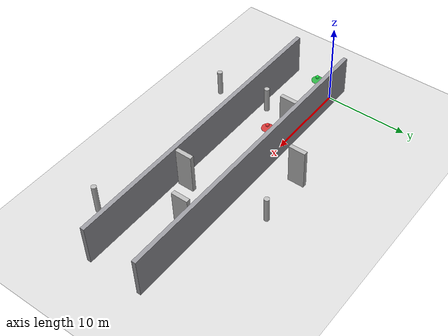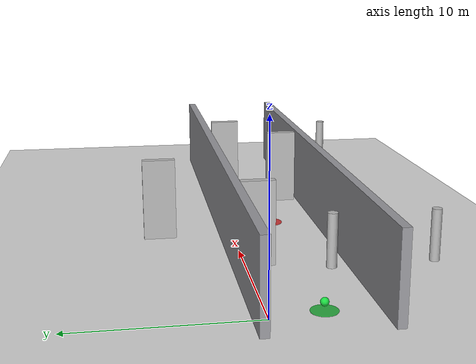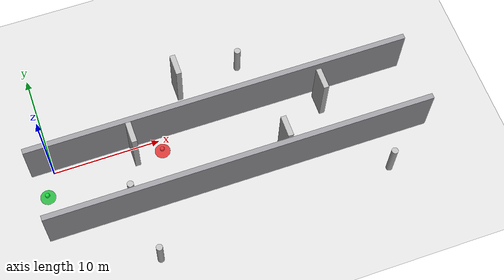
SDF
<sdf version='1.10'>
  <world name='obstacle_avoidance'>
    <physics type='ode'>
      <max_step_size>0.0040000000000000001</max_step_size>
      <real_time_factor>1</real_time_factor>
      <real_time_update_rate>250</real_time_update_rate>
    </physics>
    <plugin name='gz::sim::systems::Physics' filename='gz-sim-physics-system'/>
    <plugin name='gz::sim::systems::UserCommands' filename='gz-sim-user-commands-system'/>
    <plugin name='gz::sim::systems::SceneBroadcaster' filename='gz-sim-scene-broadcaster-system'/>
    <plugin name='gz::sim::systems::Contact' filename='gz-sim-contact-system'/>
    <plugin name='gz::sim::systems::Imu' filename='gz-sim-imu-system'/>
    <plugin name='gz::sim::systems::AirPressure' filename='gz-sim-air-pressure-system'/>
    <plugin name='gz::sim::systems::AirSpeed' filename='gz-sim-air-speed-system'/>
    <plugin name='gz::sim::systems::ApplyLinkWrench' filename='gz-sim-apply-link-wrench-system'/>
    <plugin name='gz::sim::systems::NavSat' filename='gz-sim-navsat-system'/>
    <plugin name='gz::sim::systems::Magnetometer' filename='gz-sim-magnetometer-system'/>
    <plugin name='gz::sim::systems::Sensors' filename='gz-sim-sensors-system'>
      <render_engine>ogre2</render_engine>
    </plugin>
    <plugin name='custom::OpticalFlowSystem' filename='libOpticalFlowSystem.so'/>
    <plugin name='custom::GstCameraSystem' filename='libGstCameraSystem.so'/>
    <gravity>0 0 -9.8000000000000007</gravity>
    <magnetic_field>6.0000000000000002e-06 2.3e-05 -4.1999999999999998e-05</magnetic_field>
    <atmosphere type='adiabatic'/>
    <scene>
      <grid>true</grid>
      <ambient>0.449999988 0.449999988 0.449999988 1</ambient>
      <background>0.74000001 0.769999981 0.819999993 1</background>
      <shadows>true</shadows>
    </scene>
    <spherical_coordinates>
      <surface_model>EARTH_WGS84</surface_model>
      <world_frame_orientation>ENU</world_frame_orientation>
      <latitude_deg>47.397971057728974</latitude_deg>
      <longitude_deg>8.5461637398001464</longitude_deg>
      <elevation>0</elevation>
      <heading_deg>0</heading_deg>
    </spherical_coordinates>
    <model name='ground_plane'>
      <static>true</static>
      <link name='link'>
        <collision name='collision'>
          <geometry>
            <plane>
              <normal>0 0 1</normal>
              <size>1 1</size>
            </plane>
          </geometry>
          <surface>
            <friction>
              <ode/>
            </friction>
            <bounce/>
            <contact/>
          </surface>
        </collision>
        <visual name='visual'>
          <geometry>
            <plane>
              <normal>0 0 1</normal>
              <size>120 120</size>
            </plane>
          </geometry>
          <material>
            <ambient>0.850000024 0.850000024 0.850000024 1</ambient>
            <diffuse>0.850000024 0.850000024 0.850000024 1</diffuse>
            <specular>0.400000006 0.400000006 0.400000006 1</specular>
          </material>
        </visual>
        <pose>0 0 0 0 0 0</pose>
        <inertial>
          <pose>0 0 0 0 0 0</pose>
          <mass>1</mass>
          <inertia>
            <ixx>1</ixx>
            <ixy>0</ixy>
            <ixz>0</ixz>
            <iyy>1</iyy>
            <iyz>0</iyz>
            <izz>1</izz>
          </inertia>
        </inertial>
        <enable_wind>false</enable_wind>
      </link>
      <pose>0 0 0 0 0 0</pose>
      <self_collide>false</self_collide>
    </model>
    <model name='lane_left_wall'>
      <static>false</static>
      <pose>16 0.54637867212295532 2.5 0 0 0</pose>
      <link name='link'>
        <collision name='collision'>
          <geometry>
            <box>
              <size>36 0.5 5</size>
            </box>
          </geometry>
          <surface>
            <friction>
              <ode/>
            </friction>
            <bounce/>
            <contact/>
          </surface>
        </collision>
        <visual name='visual'>
          <geometry>
            <box>
              <size>36 0.5 5</size>
            </box>
          </geometry>
          <material>
            <ambient>0.5 0.5 0.519999981 1</ambient>
            <diffuse>0.600000024 0.600000024 0.620000005 1</diffuse>
          </material>
        </visual>
        <pose>0 0 0 0 0 0</pose>
        <inertial>
          <pose>0 0 0 0 0 0</pose>
          <mass>1</mass>
          <inertia>
            <ixx>1</ixx>
            <ixy>0</ixy>
            <ixz>0</ixz>
            <iyy>1</iyy>
            <iyz>0</iyz>
            <izz>1</izz>
          </inertia>
        </inertial>
        <enable_wind>false</enable_wind>
      </link>
      <self_collide>false</self_collide>
    </model>
    <model name='lane_right_wall'>
      <static>false</static>
      <pose>16 -6 2.5 0 0 0</pose>
      <link name='link'>
        <collision name='collision'>
          <geometry>
            <box>
              <size>36 0.5 5</size>
            </box>
          </geometry>
          <surface>
            <friction>
              <ode/>
            </friction>
            <bounce/>
            <contact/>
          </surface>
        </collision>
        <visual name='visual'>
          <geometry>
            <box>
              <size>36 0.5 5</size>
            </box>
          </geometry>
          <material>
            <ambient>0.5 0.5 0.519999981 1</ambient>
            <diffuse>0.600000024 0.600000024 0.620000005 1</diffuse>
          </material>
        </visual>
        <pose>0 0 0 0 0 0</pose>
        <inertial>
          <pose>0 0 0 0 0 0</pose>
          <mass>1</mass>
          <inertia>
            <ixx>1</ixx>
            <ixy>0</ixy>
            <ixz>0</ixz>
            <iyy>1</iyy>
            <iyz>0</iyz>
            <izz>1</izz>
          </inertia>
        </inertial>
        <enable_wind>false</enable_wind>
      </link>
      <self_collide>false</self_collide>
    </model>
    <model name='block_02'>
      <static>false</static>
      <pose>6.0954799652099609 -4.6888570785522461 1.75 0 0 0</pose>
      <link name='link'>
        <collision name='collision'>
          <geometry>
            <cylinder>
              <radius>0.29999999999999999</radius>
              <length>3.2000000000000002</length>
            </cylinder>
          </geometry>
          <surface>
            <friction>
              <ode/>
            </friction>
            <bounce/>
            <contact/>
          </surface>
        </collision>
        <visual name='visual'>
          <geometry>
            <cylinder>
              <radius>0.29999999999999999</radius>
              <length>3.2000000000000002</length>
            </cylinder>
          </geometry>
        </visual>
        <pose>0 0 0 0 0 0</pose>
        <inertial>
          <pose>0 0 0 0 0 0</pose>
          <mass>1</mass>
          <inertia>
            <ixx>1</ixx>
            <ixy>0</ixy>
            <ixz>0</ixz>
            <iyy>1</iyy>
            <iyz>0</iyz>
            <izz>1</izz>
          </inertia>
        </inertial>
        <enable_wind>false</enable_wind>
      </link>
      <self_collide>false</self_collide>
    </model>
    <model name='block_04'>
      <static>false</static>
      <pose>19.404600143432617 4.9849119186401367 1.6747299432754517 0 0 0</pose>
      <link name='link'>
        <collision name='collision'>
          <geometry>
            <cylinder>
              <radius>0.29999999999999999</radius>
              <length>3.2000000000000002</length>
            </cylinder>
          </geometry>
          <surface>
            <friction>
              <ode/>
            </friction>
            <bounce/>
            <contact/>
          </surface>
        </collision>
        <visual name='visual'>
          <geometry>
            <cylinder>
              <radius>0.29999999999999999</radius>
              <length>3.2000000000000002</length>
            </cylinder>
          </geometry>
        </visual>
        <pose>0 0 0 0 0 0</pose>
        <inertial>
          <pose>0 0 0 0 0 0</pose>
          <mass>1</mass>
          <inertia>
            <ixx>1</ixx>
            <ixy>0</ixy>
            <ixz>0</ixz>
            <iyy>1</iyy>
            <iyz>0</iyz>
            <izz>1</izz>
          </inertia>
        </inertial>
        <enable_wind>false</enable_wind>
      </link>
      <self_collide>false</self_collide>
    </model>
    <model name='block_06'>
      <static>false</static>
      <pose>6.7499117851257324 -10.996500015258789 1.5 0 0 0</pose>
      <link name='link'>
        <collision name='collision'>
          <geometry>
            <cylinder>
              <radius>0.29999999999999999</radius>
              <length>3.2000000000000002</length>
            </cylinder>
          </geometry>
          <surface>
            <friction>
              <ode/>
            </friction>
            <bounce/>
            <contact/>
          </surface>
        </collision>
        <visual name='visual'>
          <geometry>
            <cylinder>
              <radius>0.29999999999999999</radius>
              <length>3.2000000000000002</length>
            </cylinder>
          </geometry>
        </visual>
        <pose>0 0 0 0 0 0</pose>
        <inertial>
          <pose>0 0 0 0 0 0</pose>
          <mass>1</mass>
          <inertia>
            <ixx>1</ixx>
            <ixy>0</ixy>
            <ixz>0</ixz>
            <iyy>1</iyy>
            <iyz>0</iyz>
            <izz>1</izz>
          </inertia>
        </inertial>
        <enable_wind>false</enable_wind>
      </link>
      <self_collide>false</self_collide>
    </model>
    <model name='cyl_02'>
      <static>false</static>
      <pose>28.938800811767578 -9.5375356674194336 2.3131399154663086 0 0 0</pose>
      <link name='link'>
        <collision name='collision'>
          <geometry>
            <cylinder>
              <radius>0.29999999999999999</radius>
              <length>3.6000000000000001</length>
            </cylinder>
          </geometry>
          <surface>
            <friction>
              <ode/>
            </friction>
            <bounce/>
            <contact/>
          </surface>
        </collision>
        <visual name='visual'>
          <geometry>
            <cylinder>
              <radius>0.29999999999999999</radius>
              <length>3.6000000000000001</length>
            </cylinder>
          </geometry>
        </visual>
        <pose>0 0 0 0 0 0</pose>
        <inertial>
          <pose>0 0 0 0 0 0</pose>
          <mass>1</mass>
          <inertia>
            <ixx>1</ixx>
            <ixy>0</ixy>
            <ixz>0</ixz>
            <iyy>1</iyy>
            <iyz>0</iyz>
            <izz>1</izz>
          </inertia>
        </inertial>
        <enable_wind>false</enable_wind>
      </link>
      <self_collide>false</self_collide>
    </model>
    <model name='start_marker'>
      <static>true</static>
      <pose>-1.0808663368225098 -2.4607799053192139 0.78510200977325439 0 0 0</pose>
      <link name='link'>
        <gravity>false</gravity>
        <self_collide>false</self_collide>
        <kinematic>true</kinematic>
        <visual name='base_ring'>
          <geometry>
            <cylinder>
              <radius>0.69999999999999996</radius>
              <length>0.040000000000000001</length>
            </cylinder>
          </geometry>
          <material>
            <ambient>0.100000001 0.699999988 0.200000003 0.850000024</ambient>
            <diffuse>0.100000001 0.699999988 0.200000003 0.850000024</diffuse>
            <specular>0.200000003 0.200000003 0.200000003 1</specular>
          </material>
        </visual>
        <visual name='center_sphere'>
          <pose>0 0 0.45000000000000001 0 0 0</pose>
          <geometry>
            <sphere>
              <radius>0.22</radius>
            </sphere>
          </geometry>
          <material>
            <ambient>0.100000001 0.850000024 0.25 1</ambient>
            <diffuse>0.100000001 0.850000024 0.25 1</diffuse>
            <specular>0.300000012 0.300000012 0.300000012 1</specular>
          </material>
        </visual>
        <pose>0 0 0 0 0 0</pose>
        <inertial>
          <pose>0 0 0 0 0 0</pose>
          <mass>1</mass>
          <inertia>
            <ixx>1</ixx>
            <ixy>0</ixy>
            <ixz>0</ixz>
            <iyy>1</iyy>
            <iyz>0</iyz>
            <izz>1</izz>
          </inertia>
        </inertial>
        <enable_wind>false</enable_wind>
      </link>
      <self_collide>false</self_collide>
    </model>
    <model name='goal_marker'>
      <static>true</static>
      <pose>9.8705587387084961 -1.8570599555969238 1.7579499483108521 0 0 0</pose>
      <link name='link'>
        <gravity>false</gravity>
        <self_collide>false</self_collide>
        <kinematic>true</kinematic>
        <visual name='base_ring'>
          <geometry>
            <cylinder>
              <radius>0.69999999999999996</radius>
              <length>0.040000000000000001</length>
            </cylinder>
          </geometry>
          <material>
            <ambient>0.850000024 0.150000006 0.150000006 0.850000024</ambient>
            <diffuse>0.850000024 0.150000006 0.150000006 0.850000024</diffuse>
            <specular>0.200000003 0.200000003 0.200000003 1</specular>
          </material>
        </visual>
        <visual name='center_sphere'>
          <pose>0 0 0.45000000000000001 0 0 0</pose>
          <geometry>
            <sphere>
              <radius>0.22</radius>
            </sphere>
          </geometry>
          <material>
            <ambient>0.949999988 0.200000003 0.200000003 1</ambient>
            <diffuse>0.949999988 0.200000003 0.200000003 1</diffuse>
            <specular>0.300000012 0.300000012 0.300000012 1</specular>
          </material>
        </visual>
        <pose>0 0 0 0 0 0</pose>
        <inertial>
          <pose>0 0 0 0 0 0</pose>
          <mass>1</mass>
          <inertia>
            <ixx>1</ixx>
            <ixy>0</ixy>
            <ixz>0</ixz>
            <iyy>1</iyy>
            <iyz>0</iyz>
            <izz>1</izz>
          </inertia>
        </inertial>
        <enable_wind>false</enable_wind>
      </link>
      <self_collide>false</self_collide>
    </model>
    <model name='goal_gate_left'>
      <static>false</static>
      <pose>7.5096898078918457 -0.71333670616149902 2.5 0 0 0</pose>
      <link name='link'>
        <collision name='collision'>
          <geometry>
            <box>
              <size>0.5 2 5</size>
            </box>
          </geometry>
          <surface>
            <friction>
              <ode/>
            </friction>
            <bounce/>
            <contact/>
          </surface>
        </collision>
        <visual name='visual'>
          <geometry>
            <box>
              <size>0.5 2 5</size>
            </box>
          </geometry>
        </visual>
        <pose>0 0 0 0 0 0</pose>
        <inertial>
          <pose>0 0 0 0 0 0</pose>
          <mass>1</mass>
          <inertia>
            <ixx>1</ixx>
            <ixy>0</ixy>
            <ixz>0</ixz>
            <iyy>1</iyy>
            <iyz>0</iyz>
            <izz>1</izz>
          </inertia>
        </inertial>
        <enable_wind>false</enable_wind>
      </link>
      <self_collide>false</self_collide>
    </model>
    <model name='goal_gate_right'>
      <static>false</static>
      <pose>13.272899627685547 4.497281551361084 2.5 0 0 0</pose>
      <link name='link'>
        <collision name='collision'>
          <geometry>
            <box>
              <size>0.5 2 5</size>
            </box>
          </geometry>
          <surface>
            <friction>
              <ode/>
            </friction>
            <bounce/>
            <contact/>
          </surface>
        </collision>
        <visual name='visual'>
          <geometry>
            <box>
              <size>0.5 2 5</size>
            </box>
          </geometry>
        </visual>
        <pose>0 0 0 0 0 0</pose>
        <inertial>
          <pose>0 0 0 0 0 0</pose>
          <mass>1</mass>
          <inertia>
            <ixx>1</ixx>
            <ixy>0</ixy>
            <ixz>0</ixz>
            <iyy>1</iyy>
            <iyz>0</iyz>
            <izz>1</izz>
          </inertia>
        </inertial>
        <enable_wind>false</enable_wind>
      </link>
      <self_collide>false</self_collide>
    </model>
    <model name='goal_gate_right_1'>
      <static>false</static>
      <pose>20.646955570654825 -4.5810821982407681 2.5 0 0 0</pose>
      <link name='link'>
        <collision name='collision'>
          <geometry>
            <box>
              <size>0.5 2 5</size>
            </box>
          </geometry>
          <surface>
            <friction>
              <ode/>
            </friction>
            <bounce/>
            <contact/>
          </surface>
        </collision>
        <visual name='visual'>
          <geometry>
            <box>
              <size>0.5 2 5</size>
            </box>
          </geometry>
        </visual>
      </link>
      <self_collide>false</self_collide>
    </model>
    <model name='goal_gate_right_1_1'>
      <static>false</static>
      <pose>25.333656574036375 -1.1406054923231146 2.5 0 0 0</pose>
      <link name='link'>
        <collision name='collision'>
          <geometry>
            <box>
              <size>0.5 2 5</size>
            </box>
          </geometry>
          <surface>
            <friction>
              <ode/>
            </friction>
            <bounce/>
            <contact/>
          </surface>
        </collision>
        <visual name='visual'>
          <geometry>
            <box>
              <size>0.5 2 5</size>
            </box>
          </geometry>
        </visual>
      </link>
      <self_collide>false</self_collide>
    </model>
    <light name='sunUTC' type='directional'>
      <pose>0 0 500 0 0 0</pose>
      <cast_shadows>true</cast_shadows>
      <intensity>1</intensity>
      <direction>0.001 0.625 -0.78000000000000003</direction>
      <diffuse>0.899999976 0.899999976 0.899999976 1</diffuse>
      <specular>0.25 0.25 0.25 1</specular>
      <attenuation>
        <range>2000</range>
        <linear>0</linear>
        <constant>1</constant>
        <quadratic>0</quadratic>
      </attenuation>
      <spot>
        <inner_angle>0</inner_angle>
        <outer_angle>0</outer_angle>
        <falloff>0</falloff>
      </spot>
    </light>
  </world>
</sdf>
